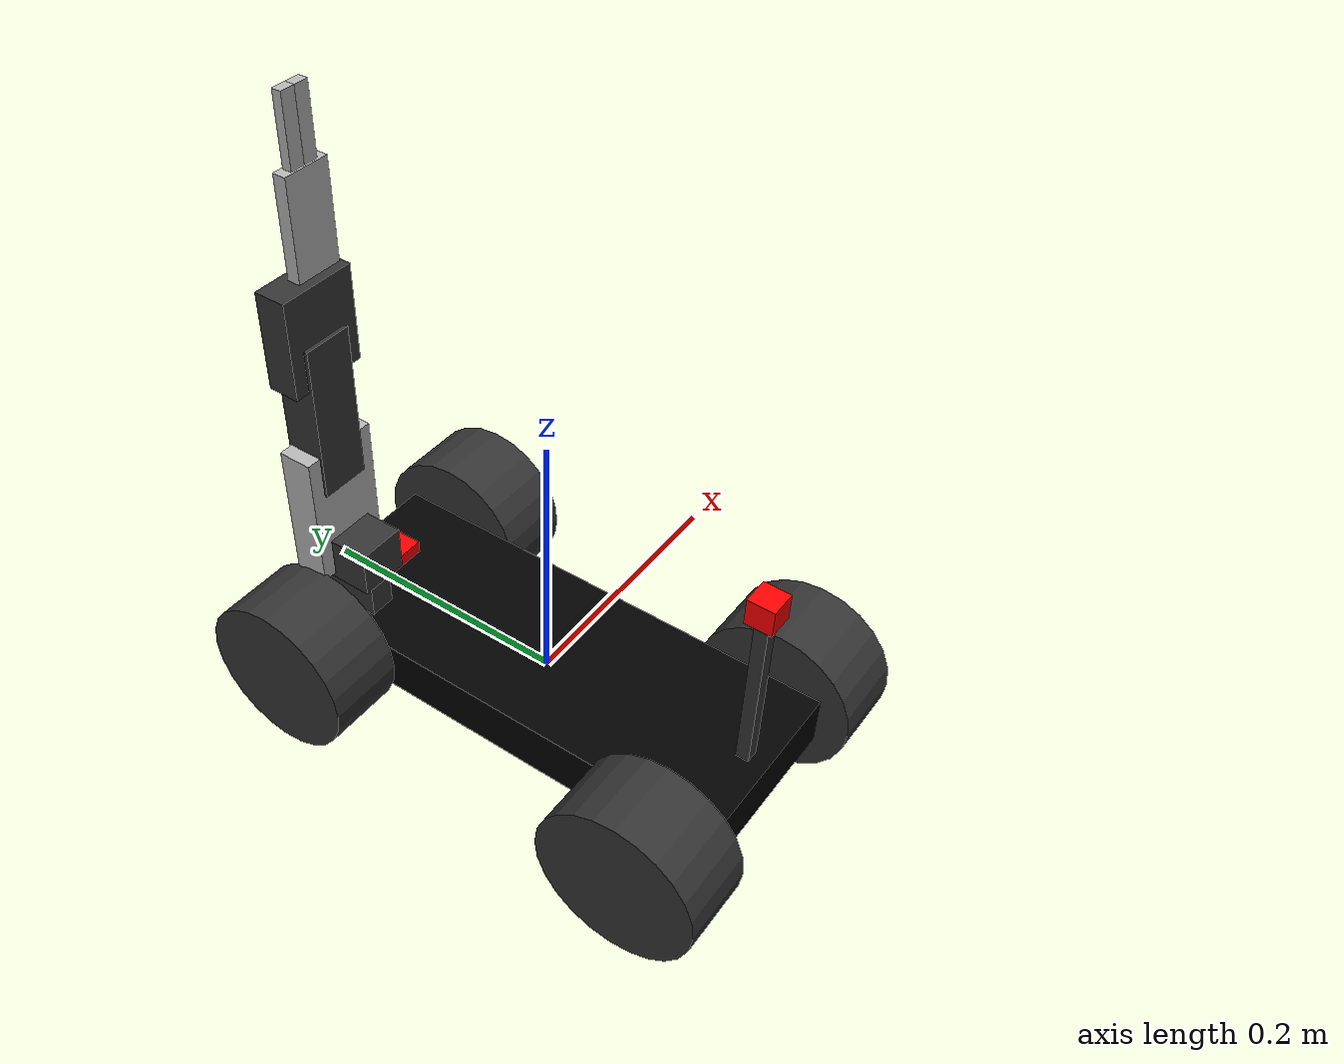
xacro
<?xml version="1.0"?>
<robot name="rover" xmlns:xacro="http://www.ros.org/wiki/xacro">

  <xacro:include filename="four_wheels.xacro"/>
  <xacro:include filename="dagu_arm.xacro"/>

  <joint name="robotArm_to_fourWheelBase" type="fixed">
    <parent link="base_link"/>
    <child link="arm_base"/>
    <origin xyz="-${(base_width/2.0)*0.6} ${(base_length/2.0)*0.8} 0" rpy="0 0 ${pi/2}"/>
  </joint>

</robot>

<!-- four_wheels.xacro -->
<robot name="four_wheel" xmlns:xacro="http://www.ros.org/wiki/xacro">

  <xacro:property name="PI" value="3.1416"/>
  <material name="black">
    <color rgba="0 0 0 1"/>
  </material>
  <material name="dark">
    <color rgba="0.2 0.2 0.2 1"/>
  </material>
  <material name="red">
    <color rgba="1.0 0.0 0.0 1.0"/>
  </material>

  <xacro:property name="base_width" value="0.14"/>
  <xacro:property name="base_length" value="0.37"/>
  <xacro:property name="base_height" value="0.0395"/>

  <xacro:property name="wheel_radius" value="${0.122/2}"/>
  <xacro:property name="wheel_width" value="0.06"/>

  <xacro:include filename="four_wheels.gazebo"/>

  <link name="base_link">
    <xacro:property name="mass" value="0.9"/>
    <xacro:property name="depth" value="0.37"/>
    <xacro:property name="height" value="0.0395"/> -->
    <visual>
      <geometry>
        <box size="${base_width} ${base_length} ${base_height}"/>
      </geometry>
      <material name="black"/>
    </visual>
    <collision>
      <geometry>
        <box size="${base_width} ${base_length} ${base_height}"/>
      </geometry>
    </collision>
    <inertial>
      <mass value="${mass}"/>
      <inertia ixx="${1/12 * mass * (base_height**2 + base_length**2)}" ixy="0.0" ixz="0.0"
                    iyy="${1/12 * mass * (base_width**2 + base_height**2)}" iyz="0.0"
                         izz="${1/12 * mass * (base_width**2 + base_length**2)}"/>
      <origin xyz="0 0 0" rpy="0 0 0" />
    </inertial>
  </link>

  <xacro:macro name="insertWheel" params="posName *origin">
    <xacro:property name="mass" value="0.25"/>
    <link name="wheel${posName}">
      <visual>
        <geometry>
          <cylinder length="${wheel_width}" radius="${wheel_radius}"/>
        </geometry>
        <origin xyz="0 0 0 " rpy="0 ${PI/2} 0" />
        <material name="dark"/>
      </visual>
      <collision>
        <geometry>
          <cylinder length="${wheel_width}" radius="${wheel_radius}"/>
        </geometry>
        <origin xyz="0 0 0" rpy="0 ${PI/2} 0" />
      </collision>
      <inertial>
        <mass value="${mass}"/>
        <inertia ixx="${1/12 * mass * (3*wheel_radius**2 + wheel_width**2)}" ixy="0.0" ixz="0.0"
                      iyy="${1/12 * mass * (3*wheel_radius**2 + wheel_width**2)}" iyz="0.0"
                           izz="${1/2 * mass * wheel_radius**2}"/>
        <origin xyz="0 0 0" rpy="0 ${PI/2} 0" />
      </inertial>
    </link>
    <joint name="baseToWheel${posName}" type="continuous">
      <parent link="base_link"/>
      <child link="wheel${posName}"/>
      <xacro:insert_block name="origin"/>
      <dynamics friction="0.0001" damping="0.00005"/>
    </joint>
  </xacro:macro>

  <xacro:insertWheel posName="FrontRight">
    <origin xyz="${base_width/2.0 + wheel_width/2.0} ${base_length*0.8/2} 0" rpy="0 0 ${PI}"/>
  </xacro:insertWheel>

  <xacro:insertWheel posName="FrontLeft">
    <origin xyz="${-(base_width/2.0 + wheel_width/2.0)} ${base_length*0.8/2} 0" rpy="0 0 ${PI}"/>
  </xacro:insertWheel>

  <xacro:insertWheel posName="RearRight">
    <origin xyz="${base_width/2.0 + wheel_width/2.0} ${-base_length*0.8/2} 0" rpy="0 0 ${PI}"/>
  </xacro:insertWheel>

  <xacro:insertWheel posName="RearLeft">
    <origin xyz="${-(base_width/2.0 + wheel_width/2.0)} ${-base_length*0.8/2} 0" rpy="0 0 ${PI}"/>
  </xacro:insertWheel>

  <xacro:property name="camera_size" value="0.02" />
  <link name="camera_link">
    <collision>
      <origin xyz="0 0 0" rpy="0 0 0"/>
      <geometry>
    <box size="${camera_size} ${camera_size} ${camera_size}"/>
      </geometry>
    </collision>

    <visual>
      <origin xyz="0 0 0" rpy="0 0 0"/>
      <geometry>
    <box size="${camera_size} ${2*camera_size} ${camera_size}"/>
      </geometry>
      <material name="red"/>
    </visual>

    <inertial>
      <mass value="1e-5"/>
      <origin xyz="0 0 0" rpy="0 0 0"/>
      <inertia ixx="1e-6" ixy="0" ixz="0" iyy="1e-6" iyz="0" izz="1e-6" />
    </inertial>
  </link>

  <joint name="camera_joint" type="fixed">
    <axis xyz="0 1 0"/>
    <origin xyz="0 ${base_length*0.8/2} ${base_height/2}" rpy="0 0 ${PI/2}"/>
    <parent link="base_link"/>
    <child link="camera_link"/>
  </joint>

  <link name="camera2_link">
    <collision>
      <origin xyz="0 0 0" rpy="0 0 0"/>
      <geometry>
    <box size="${camera_size} ${camera_size} ${camera_size}"/>
      </geometry>
    </collision>

    <visual>
      <origin xyz="0 0 0" rpy="0 0 0"/>
      <geometry>
    <box size="${camera_size} ${camera_size} ${camera_size}"/>
      </geometry>
      <material name="red"/>
    </visual>

    <inertial>
      <mass value="1e-5"/>
      <origin xyz="0 0 0" rpy="0 0 0"/>
      <inertia ixx="1e-6" ixy="0" ixz="0" iyy="1e-6" iyz="0" izz="1e-6" />
    </inertial>
  </link>

  <joint name="camera2_joint" type="fixed">
    <origin xyz="0 -${(base_length/2.0)*0.9} ${base_height*4}" rpy="0 0 ${PI/2}"/>
    <parent link="base_link"/>
    <child link="camera2_link"/>
  </joint>

  <link name="camera2_rod">
    <collision>
      <origin xyz="0 0 0" rpy="0 0 0"/>
      <geometry>
        <box size="${camera_size/4.0} ${camera_size/4.0} ${base_height*4}"/>
      </geometry>
    </collision>

    <visual>
      <origin xyz="0 0 0" rpy="0 0 0"/>
      <geometry>
        <box size="${camera_size/2.0} ${camera_size/2.0} ${base_height*4}"/>
      </geometry>
      <material name="dark"/>
    </visual>

    <inertial>
      <mass value="1e-5"/>
      <origin xyz="0 0 0" rpy="0 0 0"/>
      <inertia ixx="1e-6" ixy="0" ixz="0" iyy="1e-6" iyz="0" izz="1e-6" />
    </inertial>
  </link>

  <joint name="camera2_rod_joint" type="fixed">
    <origin xyz="0 -${(base_length/2.0)*0.9} ${base_height*2}" rpy="0 0 ${PI/2}"/>
    <parent link="base_link"/>
    <child link="camera2_rod"/>
  </joint>

</robot>

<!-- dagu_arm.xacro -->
<robot name="dagu_arm" xmlns:xacro="http://www.ros.org/wiki/xacro">

  <material name="light">
    <color rgba="0.7 0.7 0.7 1"/>
  </material>

  <xacro:macro name="generic_cube_inertia" params="width height depth mass">
    <inertial>
      <mass value="${mass}"/>
      <inertia ixx="${(mass/12.0) * (height**2 + depth**2)}" ixy="0.0" ixz="0.0"
               iyy="${(mass/12.0) * (width**2 + depth**2)}" iyz="0.0"
               izz="${(mass/12.0) * (width**2 + height**2)}"/>
    </inertial>
  </xacro:macro>

  <xacro:include filename="$(find chrzaszcz_description)/urdf/dagu_arm.gazebo" />

  <xacro:property name="arm_base_width" value="0.02"/>
  <xacro:property name="arm_base_length" value="0.055"/>
  <xacro:property name="arm_base_height" value="0.051"/>
  <xacro:property name="arm_base_mass" value="0.1"/>

  <link name="arm_base">
    <visual>
      <geometry>
        <box size="${arm_base_length} ${arm_base_width} ${arm_base_height}"/>
      </geometry>
      <origin xyz="0 0 ${arm_base_height/2.0}"/>
      <material name="dark"/>
    </visual>
    <collision>
      <geometry>
        <box size="${arm_base_length} ${arm_base_width} ${arm_base_height}"/>
      </geometry>
      <origin xyz="0 0 ${arm_base_height/2.0}"/>
    </collision>
    <xacro:generic_cube_inertia width="${arm_base_width}" height="${arm_base_height}" depth="${arm_base_length}" mass="${arm_base_mass}"/>
  </link>

  <xacro:property name="first_link_height" value="0.035"/>
  <xacro:property name="first_link_width" value="0.038"/>
  <xacro:property name="first_link_length" value="0.06"/>
  <xacro:property name="first_link_XaxisOffset" value="0.017"/>
  <xacro:property name="first_link_mass" value="0.1"/>

  <link name="first_link">
    <visual>
      <geometry>
        <box size="${first_link_length} ${first_link_width} ${first_link_height}"/>
      </geometry>
      <origin xyz="${-(first_link_length/2.0 - first_link_XaxisOffset)} 0 0"/>
      <material name="dark"/>
    </visual>
    <collision>
      <geometry>
        <box size="${first_link_length} ${first_link_width} ${first_link_height}"/>
      </geometry>
      <origin xyz="${-(first_link_length/2.0 - first_link_XaxisOffset)} 0 0"/>
    </collision>
    <xacro:generic_cube_inertia width="${first_link_width}" height="${first_link_height}" depth="${first_link_length}" mass="${first_link_mass}"/>
  </link>

  <joint name="first_to_base" type="revolute">
    <parent link="arm_base"/>
    <child link="first_link"/>
    <axis xyz="0 0 1"/>
    <origin xyz="${(arm_base_length/2.0 - first_link_XaxisOffset)} 0 ${arm_base_height + 0.5*first_link_height}"/>
    <limit effort="1000.0" lower="${-pi/2.0}" upper="${pi/2.0}" velocity="${0.175}"/>
  </joint>

  <transmission name="transmission_first_to_base">
  <type>transmission_interface/SimpleTransmission</type>
  <joint name="first_to_base">
    <hardwareInterface>hardware_interface/EffortJointInterface</hardwareInterface>
  </joint>
  <actuator name="motor1">
    <hardwareInterface>hardware_interface/EffortJointInterface</hardwareInterface>
    <mechanicalReduction>1</mechanicalReduction>
  </actuator>
</transmission>

  <xacro:property name="second_link_height" value="0.026"/>
  <xacro:property name="second_link_width" value="0.06"/>
  <xacro:property name="second_link_length" value="0.106"/>
  <xacro:property name="second_link_axisOffset" value="${(second_link_length - 0.08)/2.0}"/>
  <xacro:property name="second_link_mass" value="0.1"/>

  <link name="second_link">
    <visual>
      <geometry>
        <box size="${second_link_length} ${second_link_width} ${second_link_height}"/>
      </geometry>
      <origin xyz="${second_link_length/2.0 - second_link_axisOffset} 0 0"/>
      <material name="light"/>
    </visual>
    <collision>
      <geometry>
        <box size="${second_link_length} ${second_link_width} ${second_link_height}"/>
      </geometry>
      <origin xyz="${second_link_length/2.0 - second_link_axisOffset} 0 0"/>
    </collision>
    <xacro:generic_cube_inertia width="${second_link_width}" height="${second_link_height}" depth="${second_link_length}" mass="${second_link_mass}"/>
  </link>

  <joint name="second_to_first" type="revolute">
    <parent link="first_link"/>
    <child link="second_link"/>
    <axis xyz="0 1 0"/>
    <origin xyz="0 0 0" rpy="0 ${-pi/2.0} 0"/>
    <limit effort="1000.0" lower="${-pi/2.0}" upper="${pi/2.0}" velocity="${0.175}"/>
  </joint>

  <transmission name="transmission_second_to_first">
    <type>transmission_interface/SimpleTransmission</type>
    <joint name="second_to_first">
      <hardwareInterface>hardware_interface/EffortJointInterface</hardwareInterface>
    </joint>
    <actuator name="motor2">
      <hardwareInterface>hardware_interface/EffortJointInterface</hardwareInterface>
      <mechanicalReduction>1</mechanicalReduction>
    </actuator>
  </transmission>

  <xacro:property name="third_link_height" value="0.03"/>
  <xacro:property name="third_link_width" value="0.038"/>
  <xacro:property name="third_link_length" value="0.12"/>
  <xacro:property name="third_link_rotationAxisOffset" value="0.04"/>
  <xacro:property name="third_link_linkOffset" value="0.08"/>
  <xacro:property name="third_link_mass" value="0.1"/>

  <link name="third_link">
    <visual>
      <geometry>
        <box size="${third_link_length} ${third_link_width} ${third_link_height}"/>
      </geometry>
      <origin xyz="${third_link_rotationAxisOffset} 0 0"/>
      <material name="dark"/>
    </visual>
    <collision>
      <geometry>
        <box size="${third_link_length} ${third_link_width} ${third_link_height}"/>
      </geometry>
      <origin xyz="${third_link_rotationAxisOffset} 0 0"/>
    </collision>
    <xacro:generic_cube_inertia width="${third_link_width}" height="${third_link_height}" depth="${third_link_length}" mass="${third_link_mass}"/>
  </link>

  <joint name="third_to_second" type="revolute">
    <parent link="second_link"/>
    <child link="third_link"/>
    <axis xyz="0 1 0"/>
    <origin xyz="${third_link_linkOffset} 0 0" rpy="0 0 0"/>
    <limit effort="1000.0" lower="${-pi/2.0}" upper="${pi/2.0}" velocity="${0.175}"/>
  </joint>

  <transmission name="transmission_third_to_second">
    <type>transmission_interface/SimpleTransmission</type>
    <joint name="third_to_second">
      <hardwareInterface>hardware_interface/EffortJointInterface</hardwareInterface>
    </joint>
    <actuator name="motor3">
      <hardwareInterface>hardware_interface/EffortJointInterface</hardwareInterface>
      <mechanicalReduction>1</mechanicalReduction>
    </actuator>
  </transmission>

  <xacro:property name="fourth_link_height" value="0.024"/>
  <xacro:property name="fourth_link_width" value="0.06"/>
  <xacro:property name="fourth_link_length" value="0.073"/>
  <xacro:property name="fourth_link_rotationAxisOffset" value="${fourth_link_length/2.0 - 0.0125}"/>
  <xacro:property name="fourth_link_linkOffset" value="0.08"/>
  <xacro:property name="fourth_link_mass" value="0.1"/>

  <link name="fourth_link">
    <visual>
      <geometry>
        <box size="${fourth_link_length} ${fourth_link_width} ${fourth_link_height}"/>
      </geometry>
      <origin xyz="${fourth_link_rotationAxisOffset} 0 0"/>
      <material name="dark"/>
    </visual>
    <collision>
      <geometry>
        <box size="${fourth_link_length} ${fourth_link_width} ${fourth_link_height}"/>
      </geometry>
      <origin xyz="${fourth_link_rotationAxisOffset} 0 0"/>
    </collision>
    <xacro:generic_cube_inertia width="${fourth_link_width}" height="${fourth_link_height}" depth="${fourth_link_length}" mass="${fourth_link_mass}"/>
  </link>

  <joint name="fourth_to_third" type="revolute">
    <parent link="third_link"/>
    <child link="fourth_link"/>
    <axis xyz="0 1 0"/>
    <origin xyz="${fourth_link_linkOffset} 0 0" rpy="0 0 0"/>
    <limit effort="1000.0" lower="${-pi/2.0}" upper="${pi/2.0}" velocity="${0.175}"/>
  </joint>

  <transmission name="transmission_fourth_to_third">
    <type>transmission_interface/SimpleTransmission</type>
    <joint name="fourth_to_third">
      <hardwareInterface>hardware_interface/EffortJointInterface</hardwareInterface>
    </joint>
    <actuator name="motor4">
      <hardwareInterface>hardware_interface/EffortJointInterface</hardwareInterface>
      <mechanicalReduction>1</mechanicalReduction>
    </actuator>
  </transmission>

  <xacro:property name="fifth_link_height" value="0.01"/>
  <xacro:property name="fifth_link_width" value="0.036"/>
  <xacro:property name="fifth_link_length" value="0.073"/>
  <xacro:property name="fifth_link_rotationAxisOffset" value="0.0"/>
  <xacro:property name="fifth_link_linkOffset" value="${-(fourth_link_width/2.0 - 0.02)}"/>
  <xacro:property name="fifth_link_mass" value="0.1"/>

  <link name="fifth_link">
    <visual>
      <geometry>
        <box size="${fifth_link_length} ${fifth_link_width} ${fifth_link_height}"/>
      </geometry>
      <origin xyz="${fifth_link_rotationAxisOffset} 0 0"/>
      <material name="light"/>
    </visual>
    <collision>
      <geometry>
        <box size="${fifth_link_length} ${fifth_link_width} ${fifth_link_height}"/>
      </geometry>
      <origin xyz="${fifth_link_rotationAxisOffset} 0 0"/>
    </collision>
    <xacro:generic_cube_inertia width="${fifth_link_width}" height="${fifth_link_height}" depth="${fifth_link_length}" mass="${fifth_link_mass}"/>
  </link>

  <joint name="fifth_to_fourth" type="revolute">
    <parent link="fourth_link"/>
    <child link="fifth_link"/>
    <axis xyz="1 0 0"/>
    <origin xyz="${fourth_link_length/2.0 + fifth_link_length/2.0+fourth_link_rotationAxisOffset} ${fifth_link_linkOffset} 0" rpy="0 0 0"/>
    <limit effort="1000.0" lower="${-pi}" upper="${0}" velocity="${0.175}"/>
  </joint>

  <transmission name="transmission_fifth_to_fourth">
    <type>transmission_interface/SimpleTransmission</type>
    <joint name="fifth_to_fourth">
      <hardwareInterface>hardware_interface/EffortJointInterface</hardwareInterface>
    </joint>
    <actuator name="motor5">
      <hardwareInterface>hardware_interface/EffortJointInterface</hardwareInterface>
      <mechanicalReduction>1</mechanicalReduction>
    </actuator>
  </transmission>

  <xacro:property name="gripper_height" value="0.007"/>
  <xacro:property name="gripper_length" value="0.05"/>
  <xacro:property name="gripper_width" value="0.011"/>
  <xacro:property name="gripper_mass" value="0.01"/>

  <link name="right_gripper">
    <visual>
      <geometry>
        <box size="${gripper_length} ${gripper_width} ${gripper_height}"/>
      </geometry>
      <origin xyz="${gripper_length/2.0} ${gripper_width/2.0} 0"/>
      <material name="light"/>
    </visual>
    <collision>
      <geometry>
        <box size="${gripper_length} ${gripper_width} ${gripper_height}"/>
      </geometry>
      <origin xyz="${gripper_length/2.0} ${gripper_width/2.0} 0"/>
      <material name="light"/>
    </collision>
    <xacro:generic_cube_inertia width="${gripper_width}" height="${gripper_height}" depth="${gripper_length}" mass="${gripper_mass}"/>
  </link>

  <joint name="right_gripper_to_fifth_link" type="prismatic">
    <parent link="fifth_link"/>
    <child link="right_gripper"/>
    <axis xyz="0 1 0"/>
    <origin xyz="${fifth_link_length/2.0} 0 0" rpy="0 0 0"/>
    <limit effort="1000.0" lower="0" upper="0.035" velocity="0.01"/>
  </joint>

  <transmission name="transmission_right_gripper_to_fifth_link">
    <type>transmission_interface/SimpleTransmission</type>
    <joint name="right_gripper_to_fifth_link">
      <hardwareInterface>hardware_interface/EffortJointInterface</hardwareInterface>
    </joint>
    <actuator name="motor6">
      <hardwareInterface>hardware_interface/EffortJointInterface</hardwareInterface>
      <mechanicalReduction>1</mechanicalReduction>
    </actuator>
  </transmission>

  <link name="left_gripper">
    <visual>
      <geometry>
        <box size="${gripper_length} ${gripper_width} ${gripper_height}"/>
      </geometry>
      <origin xyz="${gripper_length/2.0} -${gripper_width/2.0} 0"/>
      <material name="light"/>
    </visual>
    <collision>
      <geometry>
        <box size="${gripper_length} ${gripper_width} ${gripper_height}"/>
      </geometry>
      <origin xyz="${gripper_length/2.0} -${gripper_width/2.0} 0"/>
      <material name="light"/>
    </collision>
    <xacro:generic_cube_inertia width="${gripper_width}" height="${gripper_height}" depth="${gripper_length}" mass="${gripper_mass}"/>
  </link>

  <joint name="left_gripper_to_fifth_link" type="prismatic">
    <parent link="fifth_link"/>
    <child link="left_gripper"/>
    <axis xyz="0 1 0"/>
    <origin xyz="${fifth_link_length/2.0} 0 0" rpy="0 0 0"/>
    <limit effort="1000.0" lower="-0.035" upper="0.0" velocity="0.01"/>
    <mimic joint="right_gripper_to_fifth_link" multiplier="-1"/>
  </joint>

  <transmission name="transmission_left_gripper_to_fifth_link">
    <type>transmission_interface/SimpleTransmission</type>
    <joint name="left_gripper_to_fifth_link">
      <hardwareInterface>hardware_interface/EffortJointInterface</hardwareInterface>
    </joint>
    <actuator name="motor7">
      <hardwareInterface>hardware_interface/EffortJointInterface</hardwareInterface>
      <mechanicalReduction>-1</mechanicalReduction>
    </actuator>
  </transmission>

</robot>
